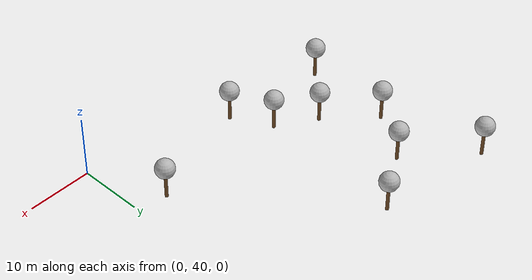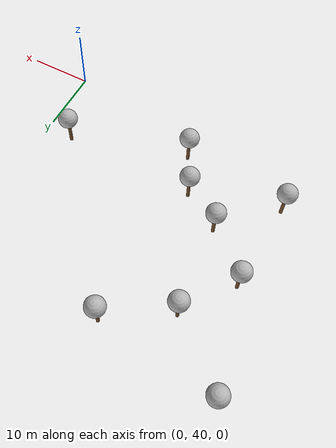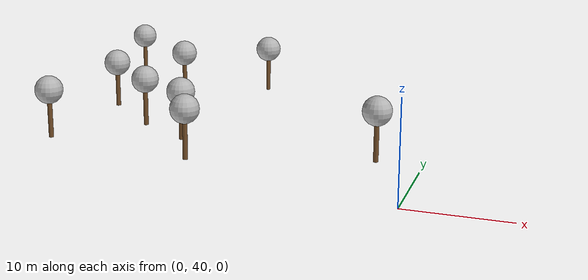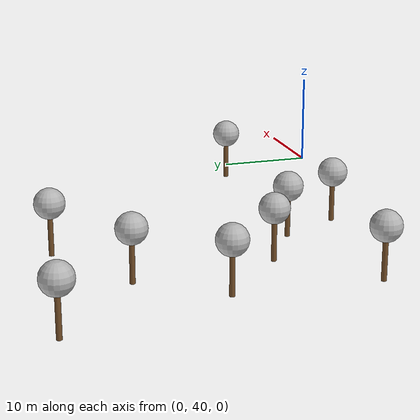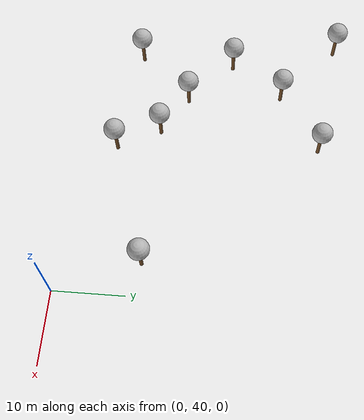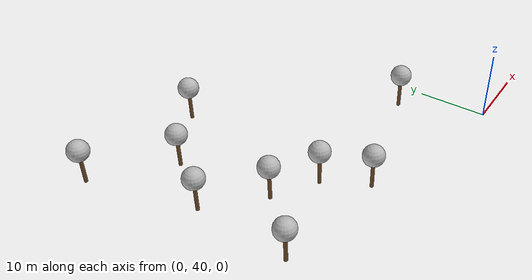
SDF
<sdf version="1.7">
 <world name="default">
  <model name="tree_simple_0_clone_0_clone">
   <static>1</static>
   <link name="link">
    <pose>0 0 0.1 0 -0 0</pose>
    <inertial>
     <mass>666</mass>
     <inertia>
      <ixx>0.0861167</ixx>
      <ixy>0</ixy>
      <ixz>0</ixz>
      <iyy>0.0861167</iyy>
      <iyz>0</iyz>
      <izz>0.0861167</izz>
     </inertia>
    </inertial>
    <collision name="collision_trunk">
     <pose>0 0 2 0 -0 0</pose>
     <geometry><cylinder><radius>0.25</radius><length>4</length></cylinder></geometry>
     <surface>
      <contact>
       <poissons_ratio>0.347</poissons_ratio>
       <elastic_modulus>8.8e+09</elastic_modulus>
       <ode><kp>100000</kp><kd>100</kd><max_vel>100</max_vel><min_depth>0.001</min_depth></ode>
      </contact>
      <friction>
       <torsional>
        <coefficient>1</coefficient>
        <use_patch_radius>0</use_patch_radius>
        <surface_radius>0.01</surface_radius>
       </torsional>
      </friction>
     </surface>
    </collision>
    <collision name="collision_treetop">
     <pose>0 0 5.2 0 -0 0</pose>
     <geometry><sphere><radius>1.5</radius></sphere></geometry>
     <surface>
      <contact>
       <poissons_ratio>0.347</poissons_ratio>
       <elastic_modulus>8.8e+09</elastic_modulus>
       <ode><kp>100000</kp><kd>100</kd><max_vel>100</max_vel><min_depth>0.001</min_depth></ode>
      </contact>
      <friction>
       <torsional>
        <coefficient>1</coefficient>
        <use_patch_radius>0</use_patch_radius>
        <surface_radius>0.01</surface_radius>
       </torsional>
      </friction>
     </surface>
    </collision>
    <visual name="trunk">
     <pose>0 0 2 0 -0 0</pose>
     <geometry><cylinder><radius>0.25</radius><length>4</length></cylinder></geometry>
     <material>
      <script>
       <uri>model://tree_simple/scripts</uri>
       <uri>model://tree_simple/materials/textures</uri>
       <name>TreeSimple/Trunk</name>
      </script>
     </material>
    </visual>
    <visual name="treetop">
     <pose>0 0 5.2 0 -0 0</pose>
     <geometry><sphere><radius>1.5</radius></sphere></geometry>
     <material>
      <script>
       <uri>model://tree_simple/scripts</uri>
       <uri>model://tree_simple/materials/textures</uri>
       <name>TreeSimple/Treetop</name>
      </script>
     </material>
    </visual>
   </link>
   <pose>-4.6416 51.6226 0 0 -0 0</pose>
  </model>
  <model name="tree_simple_0_clone_0_clone_clone">
   <static>1</static>
   <link name="link">
    <pose>0 0 0.1 0 -0 0</pose>
    <inertial>
     <mass>666</mass>
     <inertia>
      <ixx>0.0861167</ixx>
      <ixy>0</ixy>
      <ixz>0</ixz>
      <iyy>0.0861167</iyy>
      <iyz>0</iyz>
      <izz>0.0861167</izz>
     </inertia>
    </inertial>
    <collision name="collision_trunk">
     <pose>0 0 2 0 -0 0</pose>
     <geometry><cylinder><radius>0.25</radius><length>4</length></cylinder></geometry>
     <surface>
      <contact>
       <poissons_ratio>0.347</poissons_ratio>
       <elastic_modulus>8.8e+09</elastic_modulus>
       <ode><kp>100000</kp><kd>100</kd><max_vel>100</max_vel><min_depth>0.001</min_depth></ode>
      </contact>
      <friction>
       <torsional>
        <coefficient>1</coefficient>
        <use_patch_radius>0</use_patch_radius>
        <surface_radius>0.01</surface_radius>
       </torsional>
      </friction>
     </surface>
    </collision>
    <collision name="collision_treetop">
     <pose>0 0 5.2 0 -0 0</pose>
     <geometry><sphere><radius>1.5</radius></sphere></geometry>
     <surface>
      <contact>
       <poissons_ratio>0.347</poissons_ratio>
       <elastic_modulus>8.8e+09</elastic_modulus>
       <ode><kp>100000</kp><kd>100</kd><max_vel>100</max_vel><min_depth>0.001</min_depth></ode>
      </contact>
      <friction>
       <torsional>
        <coefficient>1</coefficient>
        <use_patch_radius>0</use_patch_radius>
        <surface_radius>0.01</surface_radius>
       </torsional>
      </friction>
     </surface>
    </collision>
    <visual name="trunk">
     <pose>0 0 2 0 -0 0</pose>
     <geometry><cylinder><radius>0.25</radius><length>4</length></cylinder></geometry>
     <material>
      <script>
       <uri>model://tree_simple/scripts</uri>
       <uri>model://tree_simple/materials/textures</uri>
       <name>TreeSimple/Trunk</name>
      </script>
     </material>
    </visual>
    <visual name="treetop">
     <pose>0 0 5.2 0 -0 0</pose>
     <geometry><sphere><radius>1.5</radius></sphere></geometry>
     <material>
      <script>
       <uri>model://tree_simple/scripts</uri>
       <uri>model://tree_simple/materials/textures</uri>
       <name>TreeSimple/Treetop</name>
      </script>
     </material>
    </visual>
   </link>
   <pose>-38.4069 62.1845 0 0 -0 0</pose>
  </model>
  <model name="tree_simple_0_clone_0_clone_clone_3">
   <static>1</static>
   <link name="link">
    <pose>0 0 0.1 0 -0 0</pose>
    <inertial>
     <mass>666</mass>
     <inertia>
      <ixx>0.0861167</ixx>
      <ixy>0</ixy>
      <ixz>0</ixz>
      <iyy>0.0861167</iyy>
      <iyz>0</iyz>
      <izz>0.0861167</izz>
     </inertia>
    </inertial>
    <collision name="collision_trunk">
     <pose>0 0 2 0 -0 0</pose>
     <geometry><cylinder><radius>0.25</radius><length>4</length></cylinder></geometry>
     <surface>
      <contact>
       <poissons_ratio>0.347</poissons_ratio>
       <elastic_modulus>8.8e+09</elastic_modulus>
       <ode><kp>100000</kp><kd>100</kd><max_vel>100</max_vel><min_depth>0.001</min_depth></ode>
      </contact>
      <friction>
       <torsional>
        <coefficient>1</coefficient>
        <use_patch_radius>0</use_patch_radius>
        <surface_radius>0.01</surface_radius>
       </torsional>
      </friction>
     </surface>
    </collision>
    <collision name="collision_treetop">
     <pose>0 0 5.2 0 -0 0</pose>
     <geometry><sphere><radius>1.5</radius></sphere></geometry>
     <surface>
      <contact>
       <poissons_ratio>0.347</poissons_ratio>
       <elastic_modulus>8.8e+09</elastic_modulus>
       <ode><kp>100000</kp><kd>100</kd><max_vel>100</max_vel><min_depth>0.001</min_depth></ode>
      </contact>
      <friction>
       <torsional>
        <coefficient>1</coefficient>
        <use_patch_radius>0</use_patch_radius>
        <surface_radius>0.01</surface_radius>
       </torsional>
      </friction>
     </surface>
    </collision>
    <visual name="trunk">
     <pose>0 0 2 0 -0 0</pose>
     <geometry><cylinder><radius>0.25</radius><length>4</length></cylinder></geometry>
     <material>
      <script>
       <uri>model://tree_simple/scripts</uri>
       <uri>model://tree_simple/materials/textures</uri>
       <name>TreeSimple/Trunk</name>
      </script>
     </material>
    </visual>
    <visual name="treetop">
     <pose>0 0 5.2 0 -0 0</pose>
     <geometry><sphere><radius>1.5</radius></sphere></geometry>
     <material>
      <script>
       <uri>model://tree_simple/scripts</uri>
       <uri>model://tree_simple/materials/textures</uri>
       <name>TreeSimple/Treetop</name>
      </script>
     </material>
    </visual>
   </link>
   <pose>-22.6801 46.0382 0 0 -0 0</pose>
  </model>
  <model name="tree_simple_0_clone_0_clone_clone_8">
   <static>1</static>
   <link name="link">
    <pose>0 0 0.1 0 -0 0</pose>
    <inertial>
     <mass>666</mass>
     <inertia>
      <ixx>0.0861167</ixx>
      <ixy>0</ixy>
      <ixz>0</ixz>
      <iyy>0.0861167</iyy>
      <iyz>0</iyz>
      <izz>0.0861167</izz>
     </inertia>
    </inertial>
    <collision name="collision_trunk">
     <pose>0 0 2 0 -0 0</pose>
     <geometry><cylinder><radius>0.25</radius><length>4</length></cylinder></geometry>
     <surface>
      <contact>
       <poissons_ratio>0.347</poissons_ratio>
       <elastic_modulus>8.8e+09</elastic_modulus>
       <ode><kp>100000</kp><kd>100</kd><max_vel>100</max_vel><min_depth>0.001</min_depth></ode>
      </contact>
      <friction>
       <torsional>
        <coefficient>1</coefficient>
        <use_patch_radius>0</use_patch_radius>
        <surface_radius>0.01</surface_radius>
       </torsional>
      </friction>
     </surface>
    </collision>
    <collision name="collision_treetop">
     <pose>0 0 5.2 0 -0 0</pose>
     <geometry><sphere><radius>1.5</radius></sphere></geometry>
     <surface>
      <contact>
       <poissons_ratio>0.347</poissons_ratio>
       <elastic_modulus>8.8e+09</elastic_modulus>
       <ode><kp>100000</kp><kd>100</kd><max_vel>100</max_vel><min_depth>0.001</min_depth></ode>
      </contact>
      <friction>
       <torsional>
        <coefficient>1</coefficient>
        <use_patch_radius>0</use_patch_radius>
        <surface_radius>0.01</surface_radius>
       </torsional>
      </friction>
     </surface>
    </collision>
    <visual name="trunk">
     <pose>0 0 2 0 -0 0</pose>
     <geometry><cylinder><radius>0.25</radius><length>4</length></cylinder></geometry>
     <material>
      <script>
       <uri>model://tree_simple/scripts</uri>
       <uri>model://tree_simple/materials/textures</uri>
       <name>TreeSimple/Trunk</name>
      </script>
     </material>
    </visual>
    <visual name="treetop">
     <pose>0 0 5.2 0 -0 0</pose>
     <geometry><sphere><radius>1.5</radius></sphere></geometry>
     <material>
      <script>
       <uri>model://tree_simple/scripts</uri>
       <uri>model://tree_simple/materials/textures</uri>
       <name>TreeSimple/Treetop</name>
      </script>
     </material>
    </visual>
   </link>
   <pose>-31.695 55.8135 0 0 -0 0</pose>
  </model>
  <model name="tree_simple_0_clone_0_clone_clone_10">
   <static>1</static>
   <link name="link">
    <pose>0 0 0.1 0 -0 0</pose>
    <inertial>
     <mass>666</mass>
     <inertia>
      <ixx>0.0861167</ixx>
      <ixy>0</ixy>
      <ixz>0</ixz>
      <iyy>0.0861167</iyy>
      <iyz>0</iyz>
      <izz>0.0861167</izz>
     </inertia>
    </inertial>
    <collision name="collision_trunk">
     <pose>0 0 2 0 -0 0</pose>
     <geometry><cylinder><radius>0.25</radius><length>4</length></cylinder></geometry>
     <surface>
      <contact>
       <poissons_ratio>0.347</poissons_ratio>
       <elastic_modulus>8.8e+09</elastic_modulus>
       <ode><kp>100000</kp><kd>100</kd><max_vel>100</max_vel><min_depth>0.001</min_depth></ode>
      </contact>
      <friction>
       <torsional>
        <coefficient>1</coefficient>
        <use_patch_radius>0</use_patch_radius>
        <surface_radius>0.01</surface_radius>
       </torsional>
      </friction>
     </surface>
    </collision>
    <collision name="collision_treetop">
     <pose>0 0 5.2 0 -0 0</pose>
     <geometry><sphere><radius>1.5</radius></sphere></geometry>
     <surface>
      <contact>
       <poissons_ratio>0.347</poissons_ratio>
       <elastic_modulus>8.8e+09</elastic_modulus>
       <ode><kp>100000</kp><kd>100</kd><max_vel>100</max_vel><min_depth>0.001</min_depth></ode>
      </contact>
      <friction>
       <torsional>
        <coefficient>1</coefficient>
        <use_patch_radius>0</use_patch_radius>
        <surface_radius>0.01</surface_radius>
       </torsional>
      </friction>
     </surface>
    </collision>
    <visual name="trunk">
     <pose>0 0 2 0 -0 0</pose>
     <geometry><cylinder><radius>0.25</radius><length>4</length></cylinder></geometry>
     <material>
      <script>
       <uri>model://tree_simple/scripts</uri>
       <uri>model://tree_simple/materials/textures</uri>
       <name>TreeSimple/Trunk</name>
      </script>
     </material>
    </visual>
    <visual name="treetop">
     <pose>0 0 5.2 0 -0 0</pose>
     <geometry><sphere><radius>1.5</radius></sphere></geometry>
     <material>
      <script>
       <uri>model://tree_simple/scripts</uri>
       <uri>model://tree_simple/materials/textures</uri>
       <name>TreeSimple/Treetop</name>
      </script>
     </material>
    </visual>
   </link>
   <pose>-33.0567 69.7272 0 0 -0 0</pose>
  </model>
  <model name="tree_simple_0_clone_0_clone_clone_11">
   <static>1</static>
   <link name="link">
    <pose>0 0 0.1 0 -0 0</pose>
    <inertial>
     <mass>666</mass>
     <inertia>
      <ixx>0.0861167</ixx>
      <ixy>0</ixy>
      <ixz>0</ixz>
      <iyy>0.0861167</iyy>
      <iyz>0</iyz>
      <izz>0.0861167</izz>
     </inertia>
    </inertial>
    <collision name="collision_trunk">
     <pose>0 0 2 0 -0 0</pose>
     <geometry><cylinder><radius>0.25</radius><length>4</length></cylinder></geometry>
     <surface>
      <contact>
       <poissons_ratio>0.347</poissons_ratio>
       <elastic_modulus>8.8e+09</elastic_modulus>
       <ode><kp>100000</kp><kd>100</kd><max_vel>100</max_vel><min_depth>0.001</min_depth></ode>
      </contact>
      <friction>
       <torsional>
        <coefficient>1</coefficient>
        <use_patch_radius>0</use_patch_radius>
        <surface_radius>0.01</surface_radius>
       </torsional>
      </friction>
     </surface>
    </collision>
    <collision name="collision_treetop">
     <pose>0 0 5.2 0 -0 0</pose>
     <geometry><sphere><radius>1.5</radius></sphere></geometry>
     <surface>
      <contact>
       <poissons_ratio>0.347</poissons_ratio>
       <elastic_modulus>8.8e+09</elastic_modulus>
       <ode><kp>100000</kp><kd>100</kd><max_vel>100</max_vel><min_depth>0.001</min_depth></ode>
      </contact>
      <friction>
       <torsional>
        <coefficient>1</coefficient>
        <use_patch_radius>0</use_patch_radius>
        <surface_radius>0.01</surface_radius>
       </torsional>
      </friction>
     </surface>
    </collision>
    <visual name="trunk">
     <pose>0 0 2 0 -0 0</pose>
     <geometry><cylinder><radius>0.25</radius><length>4</length></cylinder></geometry>
     <material>
      <script>
       <uri>model://tree_simple/scripts</uri>
       <uri>model://tree_simple/materials/textures</uri>
       <name>TreeSimple/Trunk</name>
      </script>
     </material>
    </visual>
    <visual name="treetop">
     <pose>0 0 5.2 0 -0 0</pose>
     <geometry><sphere><radius>1.5</radius></sphere></geometry>
     <material>
      <script>
       <uri>model://tree_simple/scripts</uri>
       <uri>model://tree_simple/materials/textures</uri>
       <name>TreeSimple/Treetop</name>
      </script>
     </material>
    </visual>
   </link>
   <pose>-24.0671 75.4676 0 0 -0 0</pose>
  </model>
  <model name="tree_simple_0_clone_0_clone_clone_12">
   <static>1</static>
   <link name="link">
    <pose>0 0 0.1 0 -0 0</pose>
    <inertial>
     <mass>666</mass>
     <inertia>
      <ixx>0.0861167</ixx>
      <ixy>0</ixy>
      <ixz>0</ixz>
      <iyy>0.0861167</iyy>
      <iyz>0</iyz>
      <izz>0.0861167</izz>
     </inertia>
    </inertial>
    <collision name="collision_trunk">
     <pose>0 0 2 0 -0 0</pose>
     <geometry><cylinder><radius>0.25</radius><length>4</length></cylinder></geometry>
     <surface>
      <contact>
       <poissons_ratio>0.347</poissons_ratio>
       <elastic_modulus>8.8e+09</elastic_modulus>
       <ode><kp>100000</kp><kd>100</kd><max_vel>100</max_vel><min_depth>0.001</min_depth></ode>
      </contact>
      <friction>
       <torsional>
        <coefficient>1</coefficient>
        <use_patch_radius>0</use_patch_radius>
        <surface_radius>0.01</surface_radius>
       </torsional>
      </friction>
     </surface>
    </collision>
    <collision name="collision_treetop">
     <pose>0 0 5.2 0 -0 0</pose>
     <geometry><sphere><radius>1.5</radius></sphere></geometry>
     <surface>
      <contact>
       <poissons_ratio>0.347</poissons_ratio>
       <elastic_modulus>8.8e+09</elastic_modulus>
       <ode><kp>100000</kp><kd>100</kd><max_vel>100</max_vel><min_depth>0.001</min_depth></ode>
      </contact>
      <friction>
       <torsional>
        <coefficient>1</coefficient>
        <use_patch_radius>0</use_patch_radius>
        <surface_radius>0.01</surface_radius>
       </torsional>
      </friction>
     </surface>
    </collision>
    <visual name="trunk">
     <pose>0 0 2 0 -0 0</pose>
     <geometry><cylinder><radius>0.25</radius><length>4</length></cylinder></geometry>
     <material>
      <script>
       <uri>model://tree_simple/scripts</uri>
       <uri>model://tree_simple/materials/textures</uri>
       <name>TreeSimple/Trunk</name>
      </script>
     </material>
    </visual>
    <visual name="treetop">
     <pose>0 0 5.2 0 -0 0</pose>
     <geometry><sphere><radius>1.5</radius></sphere></geometry>
     <material>
      <script>
       <uri>model://tree_simple/scripts</uri>
       <uri>model://tree_simple/materials/textures</uri>
       <name>TreeSimple/Treetop</name>
      </script>
     </material>
    </visual>
   </link>
   <pose>-25.7836 52.1449 0 0 -0 0</pose>
  </model>
  <model name="tree_simple_0_clone_0_clone_clone_11_clone">
   <static>1</static>
   <link name="link">
    <pose>0 0 0.1 0 -0 0</pose>
    <inertial>
     <mass>666</mass>
     <inertia>
      <ixx>0.0861167</ixx>
      <ixy>0</ixy>
      <ixz>0</ixz>
      <iyy>0.0861167</iyy>
      <iyz>0</iyz>
      <izz>0.0861167</izz>
     </inertia>
    </inertial>
    <collision name="collision_trunk">
     <pose>0 0 2 0 -0 0</pose>
     <geometry><cylinder><radius>0.25</radius><length>4</length></cylinder></geometry>
     <surface>
      <contact>
       <poissons_ratio>0.347</poissons_ratio>
       <elastic_modulus>8.8e+09</elastic_modulus>
       <ode><kp>100000</kp><kd>100</kd><max_vel>100</max_vel><min_depth>0.001</min_depth></ode>
      </contact>
      <friction>
       <torsional>
        <coefficient>1</coefficient>
        <use_patch_radius>0</use_patch_radius>
        <surface_radius>0.01</surface_radius>
       </torsional>
      </friction>
     </surface>
    </collision>
    <collision name="collision_treetop">
     <pose>0 0 5.2 0 -0 0</pose>
     <geometry><sphere><radius>1.5</radius></sphere></geometry>
     <surface>
      <contact>
       <poissons_ratio>0.347</poissons_ratio>
       <elastic_modulus>8.8e+09</elastic_modulus>
       <ode><kp>100000</kp><kd>100</kd><max_vel>100</max_vel><min_depth>0.001</min_depth></ode>
      </contact>
      <friction>
       <torsional>
        <coefficient>1</coefficient>
        <use_patch_radius>0</use_patch_radius>
        <surface_radius>0.01</surface_radius>
       </torsional>
      </friction>
     </surface>
    </collision>
    <visual name="trunk">
     <pose>0 0 2 0 -0 0</pose>
     <geometry><cylinder><radius>0.25</radius><length>4</length></cylinder></geometry>
     <material>
      <script>
       <uri>model://tree_simple/scripts</uri>
       <uri>model://tree_simple/materials/textures</uri>
       <name>TreeSimple/Trunk</name>
      </script>
     </material>
    </visual>
    <visual name="treetop">
     <pose>0 0 5.2 0 -0 0</pose>
     <geometry><sphere><radius>1.5</radius></sphere></geometry>
     <material>
      <script>
       <uri>model://tree_simple/scripts</uri>
       <uri>model://tree_simple/materials/textures</uri>
       <name>TreeSimple/Treetop</name>
      </script>
     </material>
    </visual>
   </link>
   <pose>-39.1964 48.1286 0 0 -0 0</pose>
  </model>
  <model name="tree_simple_0_clone_0_clone_clone_11_clone_0">
   <static>1</static>
   <link name="link">
    <pose>0 0 0.1 0 -0 0</pose>
    <inertial>
     <mass>666</mass>
     <inertia>
      <ixx>0.0861167</ixx>
      <ixy>0</ixy>
      <ixz>0</ixz>
      <iyy>0.0861167</iyy>
      <iyz>0</iyz>
      <izz>0.0861167</izz>
     </inertia>
    </inertial>
    <collision name="collision_trunk">
     <pose>0 0 2 0 -0 0</pose>
     <geometry><cylinder><radius>0.25</radius><length>4</length></cylinder></geometry>
     <surface>
      <contact>
       <poissons_ratio>0.347</poissons_ratio>
       <elastic_modulus>8.8e+09</elastic_modulus>
       <ode><kp>100000</kp><kd>100</kd><max_vel>100</max_vel><min_depth>0.001</min_depth></ode>
      </contact>
      <friction>
       <torsional>
        <coefficient>1</coefficient>
        <use_patch_radius>0</use_patch_radius>
        <surface_radius>0.01</surface_radius>
       </torsional>
      </friction>
     </surface>
    </collision>
    <collision name="collision_treetop">
     <pose>0 0 5.2 0 -0 0</pose>
     <geometry><sphere><radius>1.5</radius></sphere></geometry>
     <surface>
      <contact>
       <poissons_ratio>0.347</poissons_ratio>
       <elastic_modulus>8.8e+09</elastic_modulus>
       <ode><kp>100000</kp><kd>100</kd><max_vel>100</max_vel><min_depth>0.001</min_depth></ode>
      </contact>
      <friction>
       <torsional>
        <coefficient>1</coefficient>
        <use_patch_radius>0</use_patch_radius>
        <surface_radius>0.01</surface_radius>
       </torsional>
      </friction>
     </surface>
    </collision>
    <visual name="trunk">
     <pose>0 0 2 0 -0 0</pose>
     <geometry><cylinder><radius>0.25</radius><length>4</length></cylinder></geometry>
     <material>
      <script>
       <uri>model://tree_simple/scripts</uri>
       <uri>model://tree_simple/materials/textures</uri>
       <name>TreeSimple/Trunk</name>
      </script>
     </material>
    </visual>
    <visual name="treetop">
     <pose>0 0 5.2 0 -0 0</pose>
     <geometry><sphere><radius>1.5</radius></sphere></geometry>
     <material>
      <script>
       <uri>model://tree_simple/scripts</uri>
       <uri>model://tree_simple/materials/textures</uri>
       <name>TreeSimple/Treetop</name>
      </script>
     </material>
    </visual>
   </link>
   <pose>-42.3971 77.8902 0 0 -0 0</pose>
  </model>
 </world>
</sdf>
